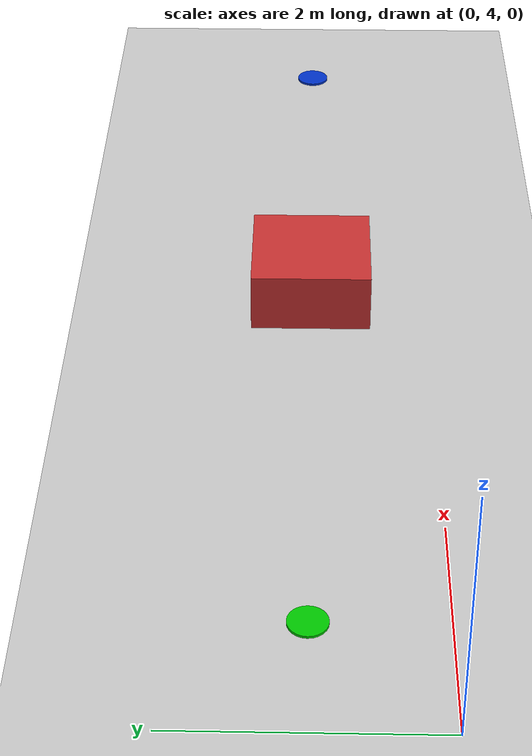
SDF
<?xml version="1.0" ?>
<sdf version="1.6">
  <world name="single_box_world">

    <!-- Physics -->
    <physics name="default_physics" default="0" type="ode">
      <max_step_size>0.001</max_step_size>
      <real_time_factor>1</real_time_factor>
      <real_time_update_rate>1000</real_time_update_rate>
    </physics>

    <!-- Plugins -->
    <plugin name="gazebo_ros_state" filename="libgazebo_ros_state.so"/>

    <!-- Lighting -->
    <light name="sun" type="directional">
      <cast_shadows>true</cast_shadows>
      <pose>0 0 10 0 0 0</pose>
      <diffuse>1 1 1 1</diffuse>
      <specular>0.2 0.2 0.2 1</specular>
      <direction>-0.5 0.1 -0.9</direction>
    </light>

    <!-- Ground plane -->
    <model name="ground_plane">
      <static>true</static>
      <link name="link">
        <collision name="collision">
          <geometry>
            <plane>
              <normal>0 0 1</normal>
              <size>20 20</size>
            </plane>
          </geometry>
        </collision>
        <visual name="visual">
          <geometry>
            <plane>
              <normal>0 0 1</normal>
              <size>20 20</size>
            </plane>
          </geometry>
          <material>
            <ambient>0.8 0.8 0.8 1</ambient>
            <diffuse>0.8 0.8 0.8 1</diffuse>
          </material>
        </visual>
      </link>
    </model>

    <!-- ── Single 1 m × 1 m box obstacle ── -->
    <model name="box_obstacle">
      <static>true</static>
      <pose>5.0 5.0 0.25 0 0 0</pose>
      <link name="link">
        <collision name="collision">
          <geometry>
            <box><size>1.0 1.0 0.5</size></box>
          </geometry>
        </collision>
        <visual name="visual">
          <geometry>
            <box><size>1.0 1.0 0.5</size></box>
          </geometry>
          <material>
            <ambient>0.8 0.2 0.2 1</ambient>
            <diffuse>0.8 0.2 0.2 1</diffuse>
          </material>
        </visual>
      </link>
    </model>

    <!-- ── Start marker (green cylinder) ── -->
    <model name="start_marker">
      <static>true</static>
      <pose>1.0 5.0 0.01 0 0 0</pose>
      <link name="link">
        <visual name="visual">
          <geometry>
            <cylinder><radius>0.15</radius><length>0.02</length></cylinder>
          </geometry>
          <material>
            <ambient>0.0 0.8 0.0 1</ambient>
            <diffuse>0.0 0.8 0.0 1</diffuse>
          </material>
        </visual>
      </link>
    </model>

    <!-- ── Goal marker (blue cylinder) ── -->
    <model name="goal_marker">
      <static>true</static>
      <pose>9.0 5.0 0.01 0 0 0</pose>
      <link name="link">
        <visual name="visual">
          <geometry>
            <cylinder><radius>0.15</radius><length>0.02</length></cylinder>
          </geometry>
          <material>
            <ambient>0.0 0.2 0.8 1</ambient>
            <diffuse>0.0 0.2 0.8 1</diffuse>
          </material>
        </visual>
      </link>
    </model>

  </world>
</sdf>
